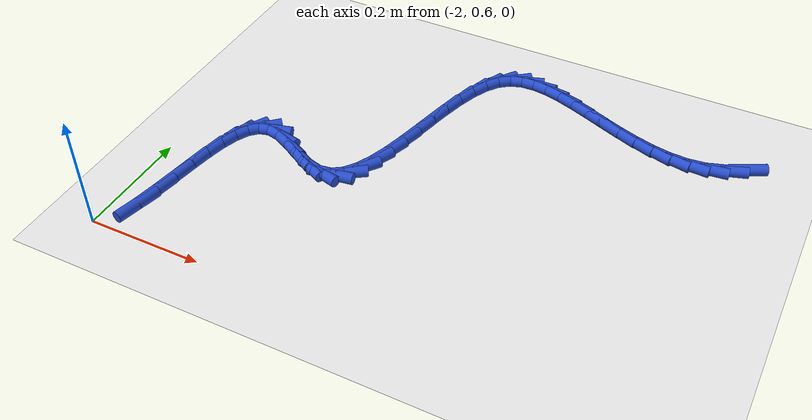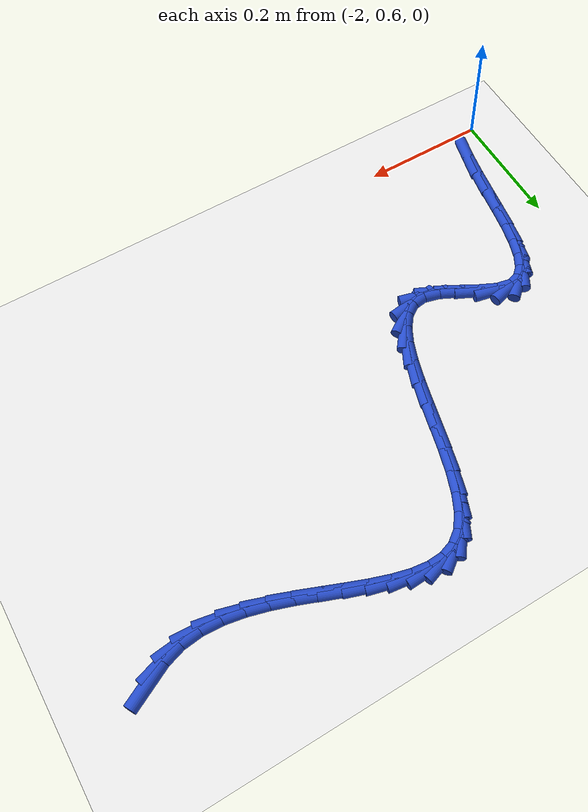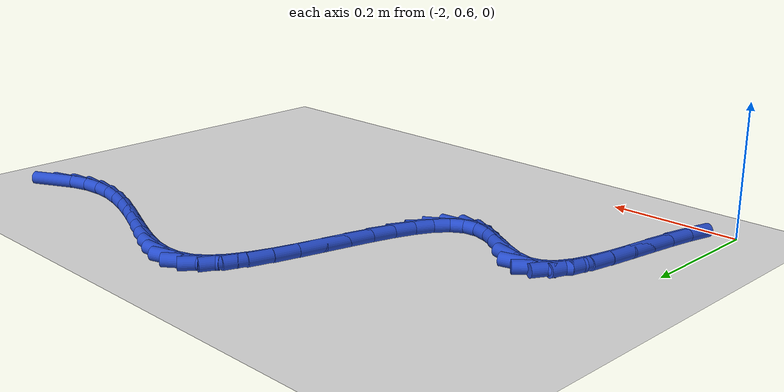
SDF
<sdf version="1.6">
 <world name="default">
  <model name="ground_plane">
   <static>1</static>
   <link name="link">
    <collision name="collision">
     <geometry><plane><normal>0 0 1</normal><size>100 100</size></plane></geometry>
     <surface><friction><ode><mu>100</mu><mu2>50</mu2></ode></friction></surface>
    </collision>
    <visual name="visual">
     <cast_shadows>0</cast_shadows>
     <geometry><plane><normal>0 0 1</normal><size>100 100</size></plane></geometry>
     <material>
      <script><uri>file://media/materials/scripts/gazebo.material</uri><name>Gazebo/WhiteGlow</name></script>
     </material>
    </visual>
   </link>
  </model>
  <model name="line">
   <link name="link_63">
    <pose>-1.1081712127692864 1.1630175430887904 0.01 0 1.57 0.47763242143462314</pose>
    <collision name="collision">
     <geometry><cylinder><radius>0.01</radius><length>0.08</length></cylinder></geometry>
    </collision>
    <visual name="visual">
     <material>
      <script><name>Gazebo/Blue</name><uri>file://media/materials/scripts/gazebo.material</uri></script>
     </material>
     <geometry><cylinder><radius>0.01</radius><length>0.08</length></cylinder></geometry>
    </visual>
   </link>
   <link name="link_64">
    <pose>-1.1362440305684454 1.148486904751901 0.01 0 1.57 0.3082845892125283</pose>
    <collision name="collision">
     <geometry><cylinder><radius>0.01</radius><length>0.08</length></cylinder></geometry>
    </collision>
    <visual name="visual">
     <material>
      <script><name>Gazebo/Blue</name><uri>file://media/materials/scripts/gazebo.material</uri></script>
     </material>
     <geometry><cylinder><radius>0.01</radius><length>0.08</length></cylinder></geometry>
    </visual>
   </link>
   <link name="link_65">
    <pose>-1.16558049175844 1.1391450867334993 0.01 0 1.57 0.10546445493285796</pose>
    <collision name="collision">
     <geometry><cylinder><radius>0.01</radius><length>0.08</length></cylinder></geometry>
    </collision>
    <visual name="visual">
     <material>
      <script><name>Gazebo/Blue</name><uri>file://media/materials/scripts/gazebo.material</uri></script>
     </material>
     <geometry><cylinder><radius>0.01</radius><length>0.08</length></cylinder></geometry>
    </visual>
   </link>
   <link name="link_66">
    <pose>-1.196217956535398 1.1359018898604762 0.01 0 1.57 -0.06290263399782152</pose>
    <collision name="collision">
     <geometry><cylinder><radius>0.01</radius><length>0.08</length></cylinder></geometry>
    </collision>
    <visual name="visual">
     <material>
      <script><name>Gazebo/Blue</name><uri>file://media/materials/scripts/gazebo.material</uri></script>
     </material>
     <geometry><cylinder><radius>0.01</radius><length>0.08</length></cylinder></geometry>
    </visual>
   </link>
   <link name="link_67">
    <pose>-1.2278626675627209 1.1378950550429325 0.01 0 1.57 -0.19002632257372995</pose>
    <collision name="collision">
     <geometry><cylinder><radius>0.01</radius><length>0.08</length></cylinder></geometry>
    </collision>
    <visual name="visual">
     <material>
      <script><name>Gazebo/Blue</name><uri>file://media/materials/scripts/gazebo.material</uri></script>
     </material>
     <geometry><cylinder><radius>0.01</radius><length>0.08</length></cylinder></geometry>
    </visual>
   </link>
   <link name="link_68">
    <pose>-1.2601931005321296 1.1441137211609955 0.01 0 1.57 -0.2808987847127313</pose>
    <collision name="collision">
     <geometry><cylinder><radius>0.01</radius><length>0.08</length></cylinder></geometry>
    </collision>
    <visual name="visual">
     <material>
      <script><name>Gazebo/Blue</name><uri>file://media/materials/scripts/gazebo.material</uri></script>
     </material>
     <geometry><cylinder><radius>0.01</radius><length>0.08</length></cylinder></geometry>
    </visual>
   </link>
   <link name="link_69">
    <pose>-1.2928877311353462 1.1535470270947912 0.01 0 1.57 -0.3415383201743969</pose>
    <collision name="collision">
     <geometry><cylinder><radius>0.01</radius><length>0.08</length></cylinder></geometry>
    </collision>
    <visual name="visual">
     <material>
      <script><name>Gazebo/Blue</name><uri>file://media/materials/scripts/gazebo.material</uri></script>
     </material>
     <geometry><cylinder><radius>0.01</radius><length>0.08</length></cylinder></geometry>
    </visual>
   </link>
   <link name="link_70">
    <pose>-1.3256250350640932 1.165184111724447 0.01 0 1.57 -0.37642613582859413</pose>
    <collision name="collision">
     <geometry><cylinder><radius>0.01</radius><length>0.08</length></cylinder></geometry>
    </collision>
    <visual name="visual">
     <material>
      <script><name>Gazebo/Blue</name><uri>file://media/materials/scripts/gazebo.material</uri></script>
     </material>
     <geometry><cylinder><radius>0.01</radius><length>0.08</length></cylinder></geometry>
    </visual>
   </link>
   <link name="link_71">
    <pose>-1.3580834880100914 1.1780141139300897 0.01 0 1.57 -0.3877595299268689</pose>
    <collision name="collision">
     <geometry><cylinder><radius>0.01</radius><length>0.08</length></cylinder></geometry>
    </collision>
    <visual name="visual">
     <material>
      <script><name>Gazebo/Blue</name><uri>file://media/materials/scripts/gazebo.material</uri></script>
     </material>
     <geometry><cylinder><radius>0.01</radius><length>0.08</length></cylinder></geometry>
    </visual>
   </link>
   <link name="link_72">
    <pose>-1.3899415656650638 1.191026172591846 0.01 0 1.57 -0.3751665785816901</pose>
    <collision name="collision">
     <geometry><cylinder><radius>0.01</radius><length>0.08</length></cylinder></geometry>
    </collision>
    <visual name="visual">
     <material>
      <script><name>Gazebo/Blue</name><uri>file://media/materials/scripts/gazebo.material</uri></script>
     </material>
     <geometry><cylinder><radius>0.01</radius><length>0.08</length></cylinder></geometry>
    </visual>
   </link>
   <link name="link_73">
    <pose>-1.4208777437207316 1.2032094265898436 0.01 0 1.57 -0.33520765378499967</pose>
    <collision name="collision">
     <geometry><cylinder><radius>0.01</radius><length>0.08</length></cylinder></geometry>
    </collision>
    <visual name="visual">
     <material>
      <script><name>Gazebo/Blue</name><uri>file://media/materials/scripts/gazebo.material</uri></script>
     </material>
     <geometry><cylinder><radius>0.01</radius><length>0.08</length></cylinder></geometry>
    </visual>
   </link>
   <link name="link_74">
    <pose>-1.4505704978688168 1.213553014804208 0.01 0 1.57 -0.26034723178940117</pose>
    <collision name="collision">
     <geometry><cylinder><radius>0.01</radius><length>0.08</length></cylinder></geometry>
    </collision>
    <visual name="visual">
     <material>
      <script><name>Gazebo/Blue</name><uri>file://media/materials/scripts/gazebo.material</uri></script>
     </material>
     <geometry><cylinder><radius>0.01</radius><length>0.08</length></cylinder></geometry>
    </visual>
   </link>
   <link name="link_75">
    <pose>-1.4786983038010424 1.221046076115067 0.01 0 1.57 -0.1375215967856883</pose>
    <collision name="collision">
     <geometry><cylinder><radius>0.01</radius><length>0.08</length></cylinder></geometry>
    </collision>
    <visual name="visual">
     <material>
      <script><name>Gazebo/Blue</name><uri>file://media/materials/scripts/gazebo.material</uri></script>
     </material>
     <geometry><cylinder><radius>0.01</radius><length>0.08</length></cylinder></geometry>
    </visual>
   </link>
   <link name="link_76">
    <pose>-1.5049396372091284 1.2246777494025474 0.01 0 1.57 0.051573187304227344</pose>
    <collision name="collision">
     <geometry><cylinder><radius>0.01</radius><length>0.08</length></cylinder></geometry>
    </collision>
    <visual name="visual">
     <material>
      <script><name>Gazebo/Blue</name><uri>file://media/materials/scripts/gazebo.material</uri></script>
     </material>
     <geometry><cylinder><radius>0.01</radius><length>0.08</length></cylinder></geometry>
    </visual>
   </link>
   <link name="link_77">
    <pose>-1.528972973784798 1.2234371735467757 0.01 0 1.57 0.31989731672112875</pose>
    <collision name="collision">
     <geometry><cylinder><radius>0.01</radius><length>0.08</length></cylinder></geometry>
    </collision>
    <visual name="visual">
     <material>
      <script><name>Gazebo/Blue</name><uri>file://media/materials/scripts/gazebo.material</uri></script>
     </material>
     <geometry><cylinder><radius>0.01</radius><length>0.08</length></cylinder></geometry>
    </visual>
   </link>
   <link name="link_78">
    <pose>-1.5504767892197722 1.2163134874278785 0.01 0 1.57 0.6442182167202926</pose>
    <collision name="collision">
     <geometry><cylinder><radius>0.01</radius><length>0.08</length></cylinder></geometry>
    </collision>
    <visual name="visual">
     <material>
      <script><name>Gazebo/Blue</name><uri>file://media/materials/scripts/gazebo.material</uri></script>
     </material>
     <geometry><cylinder><radius>0.01</radius><length>0.08</length></cylinder></geometry>
    </visual>
   </link>
   <link name="link_79">
    <pose>-1.5691315876459675 1.2023014750069336 0.01 0 1.57 0.9311280986562</pose>
    <collision name="collision">
     <geometry><cylinder><radius>0.01</radius><length>0.08</length></cylinder></geometry>
    </collision>
    <visual name="visual">
     <material>
      <script><name>Gazebo/Blue</name><uri>file://media/materials/scripts/gazebo.material</uri></script>
     </material>
     <geometry><cylinder><radius>0.01</radius><length>0.08</length></cylinder></geometry>
    </visual>
   </link>
   <link name="link_80">
    <pose>-1.5848823377224484 1.1811319161440887 0.01 0 1.57 1.1146316430394243</pose>
    <collision name="collision">
     <geometry><cylinder><radius>0.01</radius><length>0.08</length></cylinder></geometry>
    </collision>
    <visual name="visual">
     <material>
      <script><name>Gazebo/Blue</name><uri>file://media/materials/scripts/gazebo.material</uri></script>
     </material>
     <geometry><cylinder><radius>0.01</radius><length>0.08</length></cylinder></geometry>
    </visual>
   </link>
   <link name="link_81">
    <pose>-1.5981982011352474 1.1539944022925956 0.01 0 1.57 1.225687226115391</pose>
    <collision name="collision">
     <geometry><cylinder><radius>0.01</radius><length>0.08</length></cylinder></geometry>
    </collision>
    <visual name="visual">
     <material>
      <script><name>Gazebo/Blue</name><uri>file://media/materials/scripts/gazebo.material</uri></script>
     </material>
     <geometry><cylinder><radius>0.01</radius><length>0.08</length></cylinder></geometry>
    </visual>
   </link>
   <link name="link_82">
    <pose>-1.609610066951313 1.1222503101341628 0.01 0 1.57 1.2913920999494461</pose>
    <collision name="collision">
     <geometry><cylinder><radius>0.01</radius><length>0.08</length></cylinder></geometry>
    </collision>
    <visual name="visual">
     <material>
      <script><name>Gazebo/Blue</name><uri>file://media/materials/scripts/gazebo.material</uri></script>
     </material>
     <geometry><cylinder><radius>0.01</radius><length>0.08</length></cylinder></geometry>
    </visual>
   </link>
   <link name="link_83">
    <pose>-1.6196488242375944 1.0872610163504985 0.01 0 1.57 1.3263726957213753</pose>
    <collision name="collision">
     <geometry><cylinder><radius>0.01</radius><length>0.08</length></cylinder></geometry>
    </collision>
    <visual name="visual">
     <material>
      <script><name>Gazebo/Blue</name><uri>file://media/materials/scripts/gazebo.material</uri></script>
     </material>
     <geometry><cylinder><radius>0.01</radius><length>0.08</length></cylinder></geometry>
    </visual>
   </link>
   <link name="link_84">
    <pose>-1.62884536206104 1.050387897623313 0.01 0 1.57 1.3375213434836781</pose>
    <collision name="collision">
     <geometry><cylinder><radius>0.01</radius><length>0.08</length></cylinder></geometry>
    </collision>
    <visual name="visual">
     <material>
      <script><name>Gazebo/Blue</name><uri>file://media/materials/scripts/gazebo.material</uri></script>
     </material>
     <geometry><cylinder><radius>0.01</radius><length>0.08</length></cylinder></geometry>
    </visual>
   </link>
   <link name="link_85">
    <pose>-1.637730569488599 1.012992330634314 0.01 0 1.57 1.3267033455660064</pose>
    <collision name="collision">
     <geometry><cylinder><radius>0.01</radius><length>0.08</length></cylinder></geometry>
    </collision>
    <visual name="visual">
     <material>
      <script><name>Gazebo/Blue</name><uri>file://media/materials/scripts/gazebo.material</uri></script>
     </material>
     <geometry><cylinder><radius>0.01</radius><length>0.08</length></cylinder></geometry>
    </visual>
   </link>
   <link name="link_86">
    <pose>-1.6468353355872207 0.9764356920652103 0.01 0 1.57 1.2914443049571471</pose>
    <collision name="collision">
     <geometry><cylinder><radius>0.01</radius><length>0.08</length></cylinder></geometry>
    </collision>
    <visual name="visual">
     <material>
      <script><name>Gazebo/Blue</name><uri>file://media/materials/scripts/gazebo.material</uri></script>
     </material>
     <geometry><cylinder><radius>0.01</radius><length>0.08</length></cylinder></geometry>
    </visual>
   </link>
   <link name="link_87">
    <pose>-1.6566905494238537 0.9420793585977113 0.01 0 1.57 1.2237904452254624</pose>
    <collision name="collision">
     <geometry><cylinder><radius>0.01</radius><length>0.08</length></cylinder></geometry>
    </collision>
    <visual name="visual">
     <material>
      <script><name>Gazebo/Blue</name><uri>file://media/materials/scripts/gazebo.material</uri></script>
     </material>
     <geometry><cylinder><radius>0.01</radius><length>0.08</length></cylinder></geometry>
    </visual>
   </link>
   <link name="link_88">
    <pose>-1.667827100065447 0.9112847069135257 0.01 0 1.57 1.1067474344620902</pose>
    <collision name="collision">
     <geometry><cylinder><radius>0.01</radius><length>0.08</length></cylinder></geometry>
    </collision>
    <visual name="visual">
     <material>
      <script><name>Gazebo/Blue</name><uri>file://media/materials/scripts/gazebo.material</uri></script>
     </material>
     <geometry><cylinder><radius>0.01</radius><length>0.08</length></cylinder></geometry>
    </visual>
   </link>
   <link name="link_89">
    <pose>-1.6807758765789491 0.8854131136943618 0.01 0 1.57 0.9079287120516657</pose>
    <collision name="collision">
     <geometry><cylinder><radius>0.01</radius><length>0.08</length></cylinder></geometry>
    </collision>
    <visual name="visual">
     <material>
      <script><name>Gazebo/Blue</name><uri>file://media/materials/scripts/gazebo.material</uri></script>
     </material>
     <geometry><cylinder><radius>0.01</radius><length>0.08</length></cylinder></geometry>
    </visual>
   </link>
   <link name="link_90">
    <pose>-1.6960677680313094 0.8658259556219285 0.01 0 1.57 0.5815246419803138</pose>
    <collision name="collision">
     <geometry><cylinder><radius>0.01</radius><length>0.08</length></cylinder></geometry>
    </collision>
    <visual name="visual">
     <material>
      <script><name>Gazebo/Blue</name><uri>file://media/materials/scripts/gazebo.material</uri></script>
     </material>
     <geometry><cylinder><radius>0.01</radius><length>0.08</length></cylinder></geometry>
    </visual>
   </link>
   <link name="link_91">
    <pose>-1.7142336634894768 0.8538846093779346 0.01 0 1.57 0.1351948451054612</pose>
    <collision name="collision">
     <geometry><cylinder><radius>0.01</radius><length>0.08</length></cylinder></geometry>
    </collision>
    <visual name="visual">
     <material>
      <script><name>Gazebo/Blue</name><uri>file://media/materials/scripts/gazebo.material</uri></script>
     </material>
     <geometry><cylinder><radius>0.01</radius><length>0.08</length></cylinder></geometry>
    </visual>
   </link>
   <link name="link_92">
    <pose>-1.7358044520204001 0.8509504516440894 0.01 0 1.57 -0.2681887417285171</pose>
    <collision name="collision">
     <geometry><cylinder><radius>0.01</radius><length>0.08</length></cylinder></geometry>
    </collision>
    <visual name="visual">
     <material>
      <script><name>Gazebo/Blue</name><uri>file://media/materials/scripts/gazebo.material</uri></script>
     </material>
     <geometry><cylinder><radius>0.01</radius><length>0.08</length></cylinder></geometry>
    </visual>
   </link>
   <link name="link_93">
    <pose>-1.7611151159340321 0.8579060528962547 0.01 0 1.57 -0.46180623621630457</pose>
    <collision name="collision">
     <geometry><cylinder><radius>0.01</radius><length>0.08</length></cylinder></geometry>
    </collision>
    <visual name="visual">
     <material>
      <script><name>Gazebo/Blue</name><uri>file://media/materials/scripts/gazebo.material</uri></script>
     </material>
     <geometry><cylinder><radius>0.01</radius><length>0.08</length></cylinder></geometry>
    </visual>
   </link>
   <link name="link_94">
    <pose>-1.7889065033300866 0.8717378374818076 0.01 0 1.57 -0.5100852517529767</pose>
    <collision name="collision">
     <geometry><cylinder><radius>0.01</radius><length>0.08</length></cylinder></geometry>
    </collision>
    <visual name="visual">
     <material>
      <script><name>Gazebo/Blue</name><uri>file://media/materials/scripts/gazebo.material</uri></script>
     </material>
     <geometry><cylinder><radius>0.01</radius><length>0.08</length></cylinder></geometry>
    </visual>
   </link>
   <link name="link_95">
    <pose>-1.8171434312150005 0.8875355697804568 0.01 0 1.57 -0.4491219093479402</pose>
    <collision name="collision">
     <geometry><cylinder><radius>0.01</radius><length>0.08</length></cylinder></geometry>
    </collision>
    <visual name="visual">
     <material>
      <script><name>Gazebo/Blue</name><uri>file://media/materials/scripts/gazebo.material</uri></script>
     </material>
     <geometry><cylinder><radius>0.01</radius><length>0.08</length></cylinder></geometry>
    </visual>
   </link>
   <link name="link_96">
    <pose>-1.8437855258667848 0.9003763277642428 0.01 0 1.57 -0.21551154190717234</pose>
    <collision name="collision">
     <geometry><cylinder><radius>0.01</radius><length>0.08</length></cylinder></geometry>
    </collision>
    <visual name="visual">
     <material>
      <script><name>Gazebo/Blue</name><uri>file://media/materials/scripts/gazebo.material</uri></script>
     </material>
     <geometry><cylinder><radius>0.01</radius><length>0.08</length></cylinder></geometry>
    </visual>
   </link>
   <link name="link_97">
    <pose>-1.866828918425959 0.9054207846940405 0.01 0 1.57 0.25595342699521617</pose>
    <collision name="collision">
     <geometry><cylinder><radius>0.01</radius><length>0.08</length></cylinder></geometry>
    </collision>
    <visual name="visual">
     <material>
      <script><name>Gazebo/Blue</name><uri>file://media/materials/scripts/gazebo.material</uri></script>
     </material>
     <geometry><cylinder><radius>0.01</radius><length>0.08</length></cylinder></geometry>
    </visual>
   </link>
   <link name="link_98">
    <pose>-1.8854560320323295 0.9005461950065127 0.01 0 1.57 0.7452693404578961</pose>
    <collision name="collision">
     <geometry><cylinder><radius>0.01</radius><length>0.08</length></cylinder></geometry>
    </collision>
    <visual name="visual">
     <material>
      <script><name>Gazebo/Blue</name><uri>file://media/materials/scripts/gazebo.material</uri></script>
     </material>
     <geometry><cylinder><radius>0.01</radius><length>0.08</length></cylinder></geometry>
    </visual>
   </link>
   <link name="link_99">
    <pose>-1.9002677200928841 0.8868779855657838 0.01 0 1.57 1.066120270489482</pose>
    <collision name="collision">
     <geometry><cylinder><radius>0.01</radius><length>0.08</length></cylinder></geometry>
    </collision>
    <visual name="visual">
     <material>
      <script><name>Gazebo/Blue</name><uri>file://media/materials/scripts/gazebo.material</uri></script>
     </material>
     <geometry><cylinder><radius>0.01</radius><length>0.08</length></cylinder></geometry>
    </visual>
   </link>
   <link name="link_100">
    <pose>-1.9119482338846514 0.8657325624249059 0.01 0 1.57 1.2447174206061908</pose>
    <collision name="collision">
     <geometry><cylinder><radius>0.01</radius><length>0.08</length></cylinder></geometry>
    </collision>
    <visual name="visual">
     <material>
      <script><name>Gazebo/Blue</name><uri>file://media/materials/scripts/gazebo.material</uri></script>
     </material>
     <geometry><cylinder><radius>0.01</radius><length>0.08</length></cylinder></geometry>
    </visual>
   </link>
   <link name="link_101">
    <pose>-1.92118182468466 0.8384263316369304 0.01 0 1.57 1.3424759196950693</pose>
    <collision name="collision">
     <geometry><cylinder><radius>0.01</radius><length>0.08</length></cylinder></geometry>
    </collision>
    <visual name="visual">
     <material>
      <script><name>Gazebo/Blue</name><uri>file://media/materials/scripts/gazebo.material</uri></script>
     </material>
     <geometry><cylinder><radius>0.01</radius><length>0.08</length></cylinder></geometry>
    </visual>
   </link>
   <link name="link_102">
    <pose>-1.9286527437699397 0.8062756992549087 0.01 0 1.57 1.3935085732978048</pose>
    <collision name="collision">
     <geometry><cylinder><radius>0.01</radius><length>0.08</length></cylinder></geometry>
    </collision>
    <visual name="visual">
     <material>
      <script><name>Gazebo/Blue</name><uri>file://media/materials/scripts/gazebo.material</uri></script>
     </material>
     <geometry><cylinder><radius>0.01</radius><length>0.08</length></cylinder></geometry>
    </visual>
   </link>
   <link name="link_103">
    <pose>-1.9350452424175182 0.7705970713318933 0.01 0 1.57 1.4137911372714376</pose>
    <collision name="collision">
     <geometry><cylinder><radius>0.01</radius><length>0.08</length></cylinder></geometry>
    </collision>
    <visual name="visual">
     <material>
      <script><name>Gazebo/Blue</name><uri>file://media/materials/scripts/gazebo.material</uri></script>
     </material>
     <geometry><cylinder><radius>0.01</radius><length>0.08</length></cylinder></geometry>
    </visual>
   </link>
   <link name="link_104">
    <pose>-1.9410435719044263 0.732706853920936 0.01 0 1.57 1.4100615438180524</pose>
    <collision name="collision">
     <geometry><cylinder><radius>0.01</radius><length>0.08</length></cylinder></geometry>
    </collision>
    <visual name="visual">
     <material>
      <script><name>Gazebo/Blue</name><uri>file://media/materials/scripts/gazebo.material</uri></script>
     </material>
     <geometry><cylinder><radius>0.01</radius><length>0.08</length></cylinder></geometry>
    </visual>
   </link>
   <link name="link_105">
    <pose>-1.9473319835076914 0.6939214530750879 0.01 0 1.57 1.3836998592543663</pose>
    <collision name="collision">
     <geometry><cylinder><radius>0.01</radius><length>0.08</length></cylinder></geometry>
    </collision>
    <visual name="visual">
     <material>
      <script><name>Gazebo/Blue</name><uri>file://media/materials/scripts/gazebo.material</uri></script>
     </material>
     <geometry><cylinder><radius>0.01</radius><length>0.08</length></cylinder></geometry>
    </visual>
   </link>
   <link name="link_106">
    <pose>-1.9545947285043426 0.6555572748474011 0.01 0 1.57 1.3318733437368226</pose>
    <collision name="collision">
     <geometry><cylinder><radius>0.01</radius><length>0.08</length></cylinder></geometry>
    </collision>
    <visual name="visual">
     <material>
      <script><name>Gazebo/Blue</name><uri>file://media/materials/scripts/gazebo.material</uri></script>
     </material>
     <geometry><cylinder><radius>0.01</radius><length>0.08</length></cylinder></geometry>
    </visual>
   </link>
  </model>
 </world>
</sdf>
